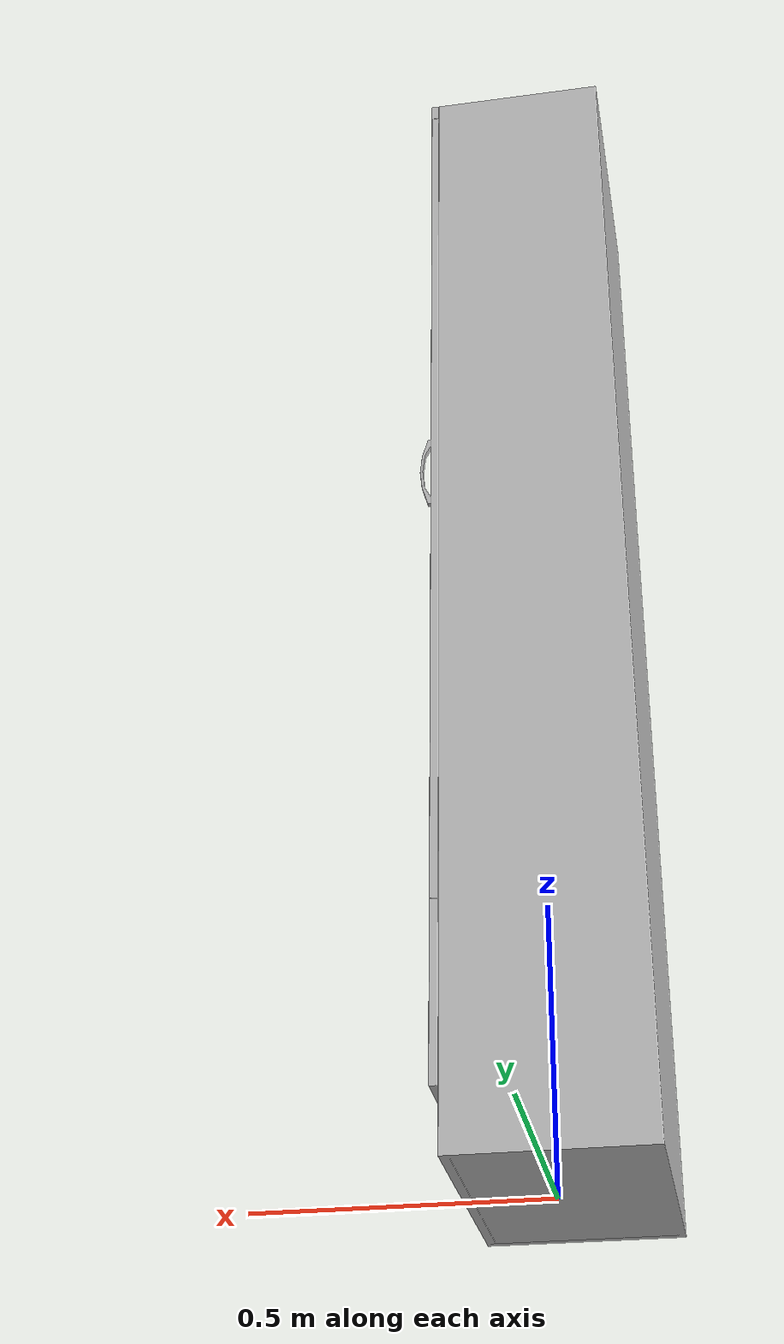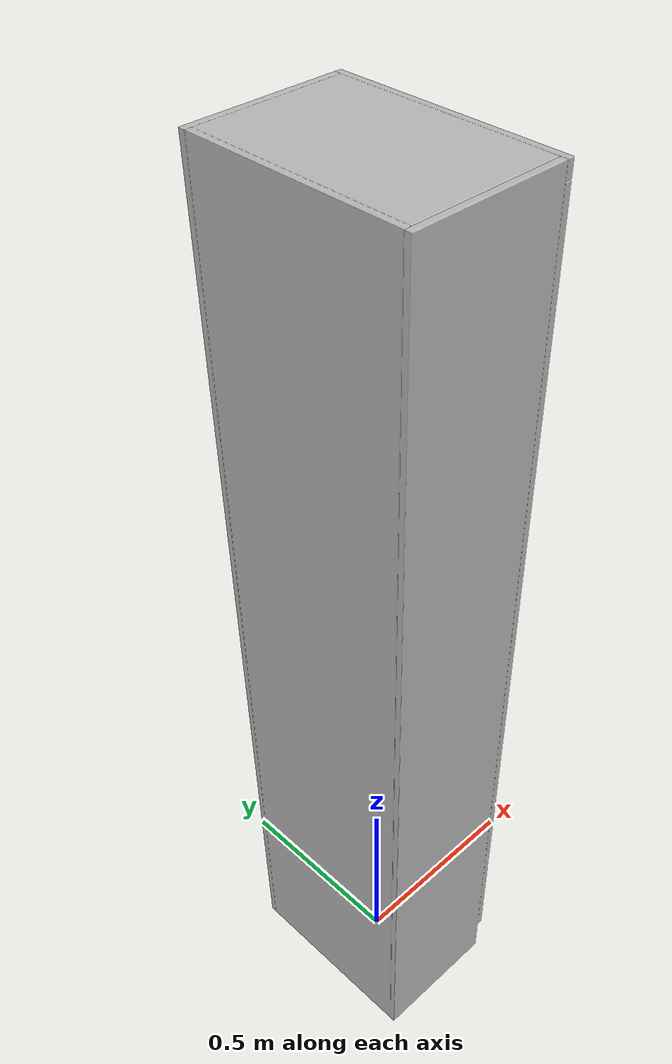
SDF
<?xml version='1.0'?>
<sdf version='1.4'>
  <model name='386'>
    <pose>0 0 0 0 0 0</pose>
    <static>true</static>
    <link name='link'>
      <collision name='collision'>
        <pose>0 0 0 0 0 0</pose>
        <geometry>
          <box>
            <size>0.368936 0.499974 2</size>
          </box>
        </geometry>
      </collision>
      <visual name='visual'>
        <pose>0 0 0 0 0 0</pose>
        <geometry>
          <mesh><uri>model://386/386.dae</uri></mesh>
        </geometry>
      </visual>
    </link>
  </model>
</sdf>
